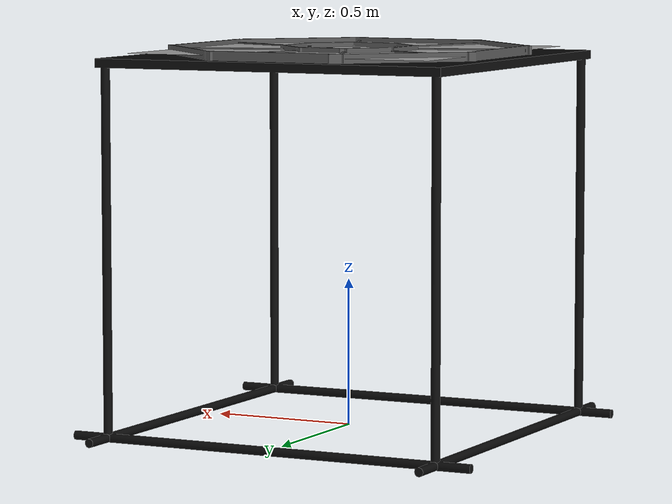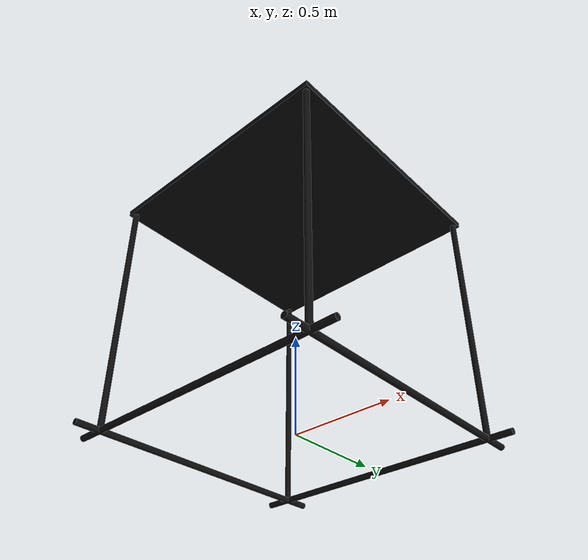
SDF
<?xml version="1.0" ?>
<sdf version="1.9">
    <model name="octagon_table">
        <static>true</static>
        <link name="octagon_table">
            <visual name="octagon_table_visual">
                <geometry>
                    <mesh>
                        <uri>octagon_table.dae</uri>
                    </mesh>
                </geometry>
            </visual>
            <collision name="octagon_table_visual">
                <geometry>
                    <mesh>
                        <uri>octagon_table.dae</uri>
                    </mesh>
                </geometry>
            </collision>
        </link>
    </model>
</sdf>
